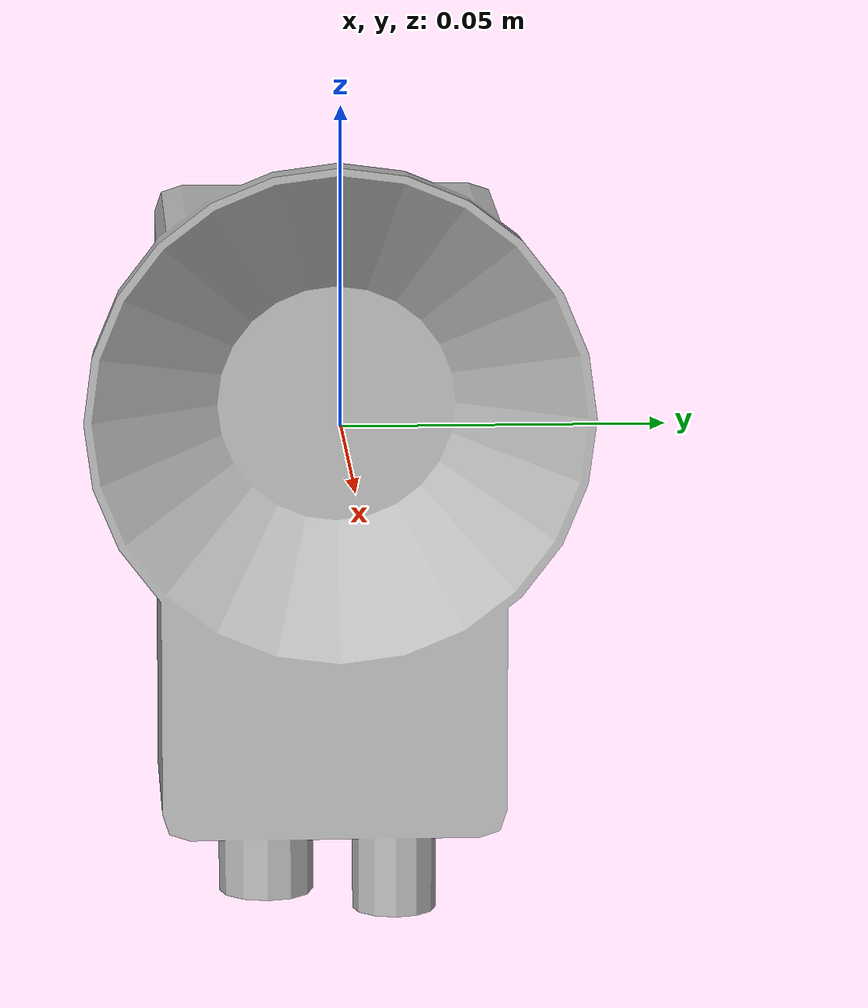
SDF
<?xml version="1.0"?>
<sdf version="1.6">
  <model name="advanced_logical_camera">
    <static>true</static>
    <link name="advanced_logical_camera">
      <visual name="visual">
        <pose>-0.02 0 -0.02 0 0 -1.5708</pose>
        <geometry>
          <mesh>
            <uri>model://advanced_logical_camera/meshes/camera.dae</uri>
          </mesh>
        </geometry>
      </visual>

      <sensor name="advanced_logical_camera" type="logical_camera">
        <topic>gz_topic_advanced_logical_camera</topic>
        <logical_camera>
            <near>0</near>
            <far>11</far>
            <horizontal_fov>1.5</horizontal_fov>
            <aspect_ratio>1.2</aspect_ratio>
        </logical_camera>

        <visualize>true</visualize>
        <always_on>true</always_on>
        <update_rate>10</update_rate>

        <plugin name="ariac_sensors::AriacLogicalCameraPlugin" filename="libAriacLogicalCameraPlugin.so">
          <rostopic>ros_topic_advanced_logical_camera</rostopic>
          <gztopic>gz_topic_advanced_logical_camera</gztopic>
          <camera_type>advanced</camera_type>
          <camera_name>advanced_logical_camera</camera_name>
          <frame_name>advanced_logical_camera_frame</frame_name>
        </plugin>

      </sensor>
    </link>
  </model>
</sdf>
